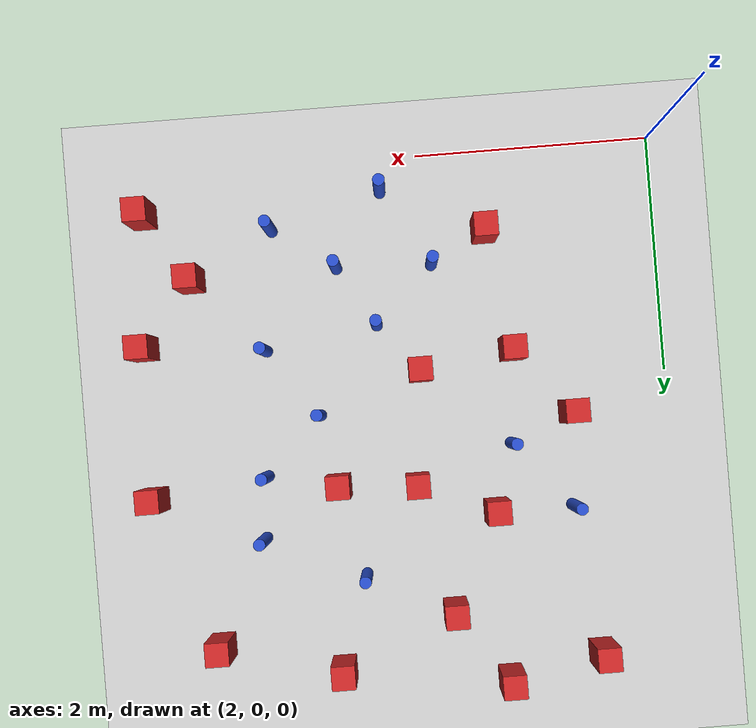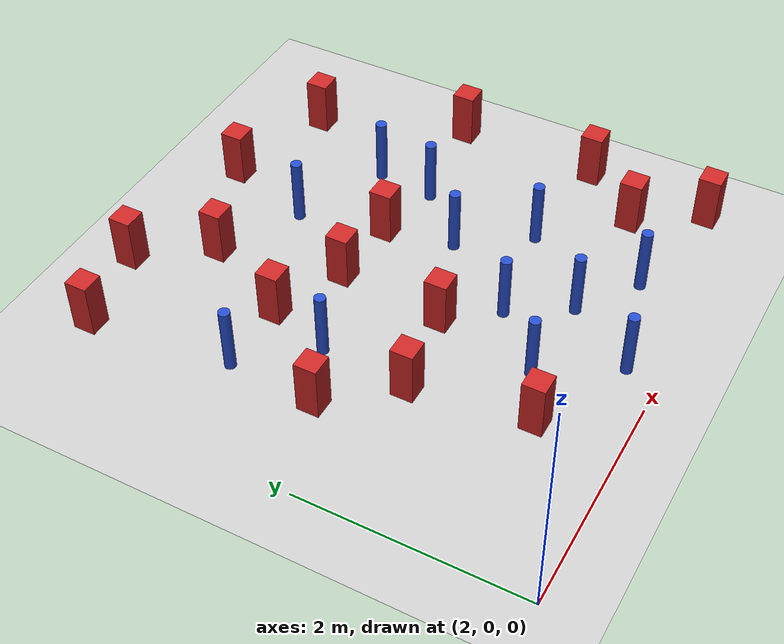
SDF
<sdf version="1.6">
 <world name="default">
  <model name="ground_plane">
   <static>1</static>
   <link name="link">
    <collision name="collision">
     <geometry><plane><normal>0 0 1</normal><size>100 100</size></plane></geometry>
     <surface><friction><ode><mu>100</mu><mu2>50</mu2></ode></friction></surface>
    </collision>
    <visual name="visual">
     <cast_shadows>0</cast_shadows>
     <geometry><plane><normal>0 0 1</normal><size>100 100</size></plane></geometry>
     <material>
      <ambient>1.0 1.0 1.0 1.0</ambient>
      <diffuse>0.8 0.8 0.8 1.0</diffuse>
      <specular>0.01 0.01 0.01 1.000000</specular>
     </material>
    </visual>
   </link>
  </model>
  <model name="square_post_obstacle9">
   <static>true</static>
   <pose>3.30981524049 1.72723753832 1.91545236811e-07 -7.35059704564e-06 1.12565212e-07 2.39332434364e-05</pose>
   <link name="link">
    <pose>0 0 0.25 0 -0 0</pose>
    <inertial>
     <mass>100</mass>
     <inertia>
      <ixx>0.166667</ixx>
      <ixy>0</ixy>
      <ixz>0</ixz>
      <iyy>0.166667</iyy>
      <iyz>0</iyz>
      <izz>0.166667</izz>
     </inertia>
    </inertial>
    <collision name="collision"><geometry><box><size>.2 .2 .5</size></box></geometry></collision>
    <visual name="visual">
     <geometry><box><size>.2 .2 .5</size></box></geometry>
     <material>
      <script><name>Gazebo/Red</name><uri>file://media/materials/scripts/gazebo.material</uri></script>
     </material>
    </visual>
   </link>
  </model>
  <model name="square_post_obstacle10">
   <static>true</static>
   <pose>6.36440647438 0.349848405972 1.91545236811e-07 -7.35059704564e-06 1.12565212e-07 2.39332434364e-05</pose>
   <link name="link">
    <pose>0 0 0.25 0 -0 0</pose>
    <inertial>
     <mass>100</mass>
     <inertia>
      <ixx>0.166667</ixx>
      <ixy>0</ixy>
      <ixz>0</ixz>
      <iyy>0.166667</iyy>
      <iyz>0</iyz>
      <izz>0.166667</izz>
     </inertia>
    </inertial>
    <collision name="collision"><geometry><box><size>.2 .2 .5</size></box></geometry></collision>
    <visual name="visual">
     <geometry><box><size>.2 .2 .5</size></box></geometry>
     <material>
      <script><name>Gazebo/Red</name><uri>file://media/materials/scripts/gazebo.material</uri></script>
     </material>
    </visual>
   </link>
  </model>
  <model name="square_post_obstacle15">
   <static>true</static>
   <pose>4.94086010703 4.34586414103 1.91545236811e-07 -7.35059704564e-06 1.12565212e-07 2.39332434364e-05</pose>
   <link name="link">
    <pose>0 0 0.25 0 -0 0</pose>
    <inertial>
     <mass>100</mass>
     <inertia>
      <ixx>0.166667</ixx>
      <ixy>0</ixy>
      <ixz>0</ixz>
      <iyy>0.166667</iyy>
      <iyz>0</iyz>
      <izz>0.166667</izz>
     </inertia>
    </inertial>
    <collision name="collision"><geometry><box><size>.2 .2 .5</size></box></geometry></collision>
    <visual name="visual">
     <geometry><box><size>.2 .2 .5</size></box></geometry>
     <material>
      <script><name>Gazebo/Red</name><uri>file://media/materials/scripts/gazebo.material</uri></script>
     </material>
    </visual>
   </link>
  </model>
  <model name="pole_obstacle23">
   <static>true</static>
   <pose>2.88126556664 3.10218381477 7.38925637345e-09 -8.47170692798e-08 1.24976764939e-08 -1.74513093025e-07</pose>
   <link name="link">
    <pose>0 0 0.3 0 -0 0</pose>
    <inertial>
     <mass>1</mass>
     <inertia><ixx>0.145833</ixx><ixy>0</ixy><ixz>0</ixz><iyy>0.145833</iyy><iyz>0</iyz><izz>0.125</izz></inertia>
    </inertial>
    <collision name="collision">
     <geometry><cylinder><radius>0.05</radius><length>.6</length></cylinder></geometry>
    </collision>
    <visual name="visual">
     <geometry><cylinder><radius>0.05</radius><length>.6</length></cylinder></geometry>
     <material>
      <script><name>Gazebo/Blue</name><uri>file://media/materials/scripts/gazebo.material</uri></script>
     </material>
    </visual>
   </link>
  </model>
  <model name="square_post_obstacle40">
   <static>true</static>
   <pose>6.44460343799 2.77317127029 1.91545236811e-07 -7.35059704564e-06 1.12565212e-07 2.39332434364e-05</pose>
   <link name="link">
    <pose>0 0 0.25 0 -0 0</pose>
    <inertial>
     <mass>100</mass>
     <inertia>
      <ixx>0.166667</ixx>
      <ixy>0</ixy>
      <ixz>0</ixz>
      <iyy>0.166667</iyy>
      <iyz>0</iyz>
      <izz>0.166667</izz>
     </inertia>
    </inertial>
    <collision name="collision"><geometry><box><size>.2 .2 .5</size></box></geometry></collision>
    <visual name="visual">
     <geometry><box><size>.2 .2 .5</size></box></geometry>
     <material>
      <script><name>Gazebo/Red</name><uri>file://media/materials/scripts/gazebo.material</uri></script>
     </material>
    </visual>
   </link>
  </model>
  <model name="pole_obstacle54">
   <static>true</static>
   <pose>3.36767603161 2.5311120097 7.38925637345e-09 -8.47170692798e-08 1.24976764939e-08 -1.74513093025e-07</pose>
   <link name="link">
    <pose>0 0 0.3 0 -0 0</pose>
    <inertial>
     <mass>1</mass>
     <inertia><ixx>0.145833</ixx><ixy>0</ixy><ixz>0</ixz><iyy>0.145833</iyy><iyz>0</iyz><izz>0.125</izz></inertia>
    </inertial>
    <collision name="collision">
     <geometry><cylinder><radius>0.05</radius><length>.6</length></cylinder></geometry>
    </collision>
    <visual name="visual">
     <geometry><cylinder><radius>0.05</radius><length>.6</length></cylinder></geometry>
     <material>
      <script><name>Gazebo/Blue</name><uri>file://media/materials/scripts/gazebo.material</uri></script>
     </material>
    </visual>
   </link>
  </model>
  <model name="pole_obstacle65">
   <static>true</static>
   <pose>4.75222611093 0.916089162398 7.38925637345e-09 -8.47170692799e-08 1.24976765038e-08 -1.74513093018e-07</pose>
   <link name="link">
    <pose>0 0 0.3 0 -0 0</pose>
    <inertial>
     <mass>1</mass>
     <inertia><ixx>0.145833</ixx><ixy>0</ixy><ixz>0</ixz><iyy>0.145833</iyy><iyz>0</iyz><izz>0.125</izz></inertia>
    </inertial>
    <collision name="collision">
     <geometry><cylinder><radius>0.05</radius><length>.6</length></cylinder></geometry>
    </collision>
    <visual name="visual">
     <geometry><cylinder><radius>0.05</radius><length>.6</length></cylinder></geometry>
     <material>
      <script><name>Gazebo/Blue</name><uri>file://media/materials/scripts/gazebo.material</uri></script>
     </material>
    </visual>
   </link>
  </model>
  <model name="square_post_obstacle51">
   <static>true</static>
   <pose>4.86624607908 2.77830074005 1.91545236811e-07 -7.35059704564e-06 1.12565212e-07 2.39332434364e-05</pose>
   <link name="link">
    <pose>0 0 0.25 0 -0 0</pose>
    <inertial>
     <mass>100</mass>
     <inertia>
      <ixx>0.166667</ixx>
      <ixy>0</ixy>
      <ixz>0</ixz>
      <iyy>0.166667</iyy>
      <iyz>0</iyz>
      <izz>0.166667</izz>
     </inertia>
    </inertial>
    <collision name="collision"><geometry><box><size>.2 .2 .5</size></box></geometry></collision>
    <visual name="visual">
     <geometry><box><size>.2 .2 .5</size></box></geometry>
     <material>
      <script><name>Gazebo/Red</name><uri>file://media/materials/scripts/gazebo.material</uri></script>
     </material>
    </visual>
   </link>
  </model>
  <model name="pole_obstacle82">
   <static>true</static>
   <pose>3.93563042666 0.946828418988 7.38925637345e-09 -8.471706928e-08 1.24976765177e-08 -1.74513093012e-07</pose>
   <link name="link">
    <pose>0 0 0.3 0 -0 0</pose>
    <inertial>
     <mass>1</mass>
     <inertia><ixx>0.145833</ixx><ixy>0</ixy><ixz>0</ixz><iyy>0.145833</iyy><iyz>0</iyz><izz>0.125</izz></inertia>
    </inertial>
    <collision name="collision">
     <geometry><cylinder><radius>0.05</radius><length>.6</length></cylinder></geometry>
    </collision>
    <visual name="visual">
     <geometry><cylinder><radius>0.05</radius><length>.6</length></cylinder></geometry>
     <material>
      <script><name>Gazebo/Blue</name><uri>file://media/materials/scripts/gazebo.material</uri></script>
     </material>
    </visual>
   </link>
  </model>
  <model name="square_post_obstacle82">
   <static>true</static>
   <pose>4.19795775018 2.82239375829 1.91545236811e-07 -7.35059704564e-06 1.12565212e-07 2.39332434364e-05</pose>
   <link name="link">
    <pose>0 0 0.25 0 -0 0</pose>
    <inertial>
     <mass>100</mass>
     <inertia>
      <ixx>0.166667</ixx>
      <ixy>0</ixy>
      <ixz>0</ixz>
      <iyy>0.166667</iyy>
      <iyz>0</iyz>
      <izz>0.166667</izz>
     </inertia>
    </inertial>
    <collision name="collision"><geometry><box><size>.2 .2 .5</size></box></geometry></collision>
    <visual name="visual">
     <geometry><box><size>.2 .2 .5</size></box></geometry>
     <material>
      <script><name>Gazebo/Red</name><uri>file://media/materials/scripts/gazebo.material</uri></script>
     </material>
    </visual>
   </link>
  </model>
  <model name="pole_obstacle100">
   <static>true</static>
   <pose>5.28343789508 0.550524538946 7.38925637345e-09 -8.47170692799e-08 1.24976765038e-08 -1.74513093018e-07</pose>
   <link name="link">
    <pose>0 0 0.3 0 -0 0</pose>
    <inertial>
     <mass>1</mass>
     <inertia><ixx>0.145833</ixx><ixy>0</ixy><ixz>0</ixz><iyy>0.145833</iyy><iyz>0</iyz><izz>0.125</izz></inertia>
    </inertial>
    <collision name="collision">
     <geometry><cylinder><radius>0.05</radius><length>.6</length></cylinder></geometry>
    </collision>
    <visual name="visual">
     <geometry><cylinder><radius>0.05</radius><length>.6</length></cylinder></geometry>
     <material>
      <script><name>Gazebo/Blue</name><uri>file://media/materials/scripts/gazebo.material</uri></script>
     </material>
    </visual>
   </link>
  </model>
  <model name="pole_obstacle108">
   <static>true</static>
   <pose>5.40565275918 1.57980055018 7.38925637345e-09 -8.471706928e-08 1.24976765134e-08 -1.74513093015e-07</pose>
   <link name="link">
    <pose>0 0 0.3 0 -0 0</pose>
    <inertial>
     <mass>1</mass>
     <inertia><ixx>0.145833</ixx><ixy>0</ixy><ixz>0</ixz><iyy>0.145833</iyy><iyz>0</iyz><izz>0.125</izz></inertia>
    </inertial>
    <collision name="collision">
     <geometry><cylinder><radius>0.05</radius><length>.6</length></cylinder></geometry>
    </collision>
    <visual name="visual">
     <geometry><cylinder><radius>0.05</radius><length>.6</length></cylinder></geometry>
     <material>
      <script><name>Gazebo/Blue</name><uri>file://media/materials/scripts/gazebo.material</uri></script>
     </material>
    </visual>
   </link>
  </model>
  <model name="pole_obstacle115">
   <static>true</static>
   <pose>5.47574123155 2.65554993993 7.38925637345e-09 -8.47170692798e-08 1.24976764937e-08 -1.74513093023e-07</pose>
   <link name="link">
    <pose>0 0 0.3 0 -0 0</pose>
    <inertial>
     <mass>1</mass>
     <inertia><ixx>0.145833</ixx><ixy>0</ixy><ixz>0</ixz><iyy>0.145833</iyy><iyz>0</iyz><izz>0.125</izz></inertia>
    </inertial>
    <collision name="collision">
     <geometry><cylinder><radius>0.05</radius><length>.6</length></cylinder></geometry>
    </collision>
    <visual name="visual">
     <geometry><cylinder><radius>0.05</radius><length>.6</length></cylinder></geometry>
     <material>
      <script><name>Gazebo/Blue</name><uri>file://media/materials/scripts/gazebo.material</uri></script>
     </material>
    </visual>
   </link>
  </model>
  <model name="pole_obstacle124">
   <static>true</static>
   <pose>4.69202864698 3.55970135627 7.38925637345e-09 -8.47170692798e-08 1.24976764937e-08 -1.74513093023e-07</pose>
   <link name="link">
    <pose>0 0 0.3 0 -0 0</pose>
    <inertial>
     <mass>1</mass>
     <inertia><ixx>0.145833</ixx><ixy>0</ixy><ixz>0</ixz><iyy>0.145833</iyy><iyz>0</iyz><izz>0.125</izz></inertia>
    </inertial>
    <collision name="collision">
     <geometry><cylinder><radius>0.05</radius><length>.6</length></cylinder></geometry>
    </collision>
    <visual name="visual">
     <geometry><cylinder><radius>0.05</radius><length>.6</length></cylinder></geometry>
     <material>
      <script><name>Gazebo/Blue</name><uri>file://media/materials/scripts/gazebo.material</uri></script>
     </material>
    </visual>
   </link>
  </model>
  <model name="square_post_obstacle126">
   <static>true</static>
   <pose>3.54507340061 3.09247291131 1.91545236811e-07 -7.35059704564e-06 1.12565212e-07 2.39332434364e-05</pose>
   <link name="link">
    <pose>0 0 0.25 0 -0 0</pose>
    <inertial>
     <mass>100</mass>
     <inertia>
      <ixx>0.166667</ixx>
      <ixy>0</ixy>
      <ixz>0</ixz>
      <iyy>0.166667</iyy>
      <iyz>0</iyz>
      <izz>0.166667</izz>
     </inertia>
    </inertial>
    <collision name="collision"><geometry><box><size>.2 .2 .5</size></box></geometry></collision>
    <visual name="visual">
     <geometry><box><size>.2 .2 .5</size></box></geometry>
     <material>
      <script><name>Gazebo/Red</name><uri>file://media/materials/scripts/gazebo.material</uri></script>
     </material>
    </visual>
   </link>
  </model>
  <model name="pole_obstacle133">
   <static>true</static>
   <pose>4.98295653756 2.16622271053 7.38925637345e-09 -8.47170692798e-08 1.24976764937e-08 -1.74513093023e-07</pose>
   <link name="link">
    <pose>0 0 0.3 0 -0 0</pose>
    <inertial>
     <mass>1</mass>
     <inertia><ixx>0.145833</ixx><ixy>0</ixy><ixz>0</ixz><iyy>0.145833</iyy><iyz>0</iyz><izz>0.125</izz></inertia>
    </inertial>
    <collision name="collision">
     <geometry><cylinder><radius>0.05</radius><length>.6</length></cylinder></geometry>
    </collision>
    <visual name="visual">
     <geometry><cylinder><radius>0.05</radius><length>.6</length></cylinder></geometry>
     <material>
      <script><name>Gazebo/Blue</name><uri>file://media/materials/scripts/gazebo.material</uri></script>
     </material>
    </visual>
   </link>
  </model>
  <model name="square_post_obstacle147">
   <static>true</static>
   <pose>5.96679147998 4.07127458139 1.91545236811e-07 -7.35059704564e-06 1.12565212e-07 2.39332434364e-05</pose>
   <link name="link">
    <pose>0 0 0.25 0 -0 0</pose>
    <inertial>
     <mass>100</mass>
     <inertia>
      <ixx>0.166667</ixx>
      <ixy>0</ixy>
      <ixz>0</ixz>
      <iyy>0.166667</iyy>
      <iyz>0</iyz>
      <izz>0.166667</izz>
     </inertia>
    </inertial>
    <collision name="collision"><geometry><box><size>.2 .2 .5</size></box></geometry></collision>
    <visual name="visual">
     <geometry><box><size>.2 .2 .5</size></box></geometry>
     <material>
      <script><name>Gazebo/Red</name><uri>file://media/materials/scripts/gazebo.material</uri></script>
     </material>
    </visual>
   </link>
  </model>
  <model name="square_post_obstacle149">
   <static>true</static>
   <pose>5.99089258848 0.931292589408 1.91545236811e-07 -7.35059704564e-06 1.12565212e-07 2.39332434364e-05</pose>
   <link name="link">
    <pose>0 0 0.25 0 -0 0</pose>
    <inertial>
     <mass>100</mass>
     <inertia>
      <ixx>0.166667</ixx>
      <ixy>0</ixy>
      <ixz>0</ixz>
      <iyy>0.166667</iyy>
      <iyz>0</iyz>
      <izz>0.166667</izz>
     </inertia>
    </inertial>
    <collision name="collision"><geometry><box><size>.2 .2 .5</size></box></geometry></collision>
    <visual name="visual">
     <geometry><box><size>.2 .2 .5</size></box></geometry>
     <material>
      <script><name>Gazebo/Red</name><uri>file://media/materials/scripts/gazebo.material</uri></script>
     </material>
    </visual>
   </link>
  </model>
  <model name="square_post_obstacle169">
   <static>true</static>
   <pose>3.9601357315 3.92242300364 1.91545236811e-07 -7.35059704564e-06 1.12565212e-07 2.39332434364e-05</pose>
   <link name="link">
    <pose>0 0 0.25 0 -0 0</pose>
    <inertial>
     <mass>100</mass>
     <inertia>
      <ixx>0.166667</ixx>
      <ixy>0</ixy>
      <ixz>0</ixz>
      <iyy>0.166667</iyy>
      <iyz>0</iyz>
      <izz>0.166667</izz>
     </inertia>
    </inertial>
    <collision name="collision"><geometry><box><size>.2 .2 .5</size></box></geometry></collision>
    <visual name="visual">
     <geometry><box><size>.2 .2 .5</size></box></geometry>
     <material>
      <script><name>Gazebo/Red</name><uri>file://media/materials/scripts/gazebo.material</uri></script>
     </material>
    </visual>
   </link>
  </model>
  <model name="pole_obstacle173">
   <static>true</static>
   <pose>5.5318144581 3.18457841593 7.38925637345e-09 -8.47170692798e-08 1.24976764937e-08 -1.74513093023e-07</pose>
   <link name="link">
    <pose>0 0 0.3 0 -0 0</pose>
    <inertial>
     <mass>1</mass>
     <inertia><ixx>0.145833</ixx><ixy>0</ixy><ixz>0</ixz><iyy>0.145833</iyy><iyz>0</iyz><izz>0.125</izz></inertia>
    </inertial>
    <collision name="collision">
     <geometry><cylinder><radius>0.05</radius><length>.6</length></cylinder></geometry>
    </collision>
    <visual name="visual">
     <geometry><cylinder><radius>0.05</radius><length>.6</length></cylinder></geometry>
     <material>
      <script><name>Gazebo/Blue</name><uri>file://media/materials/scripts/gazebo.material</uri></script>
     </material>
    </visual>
   </link>
  </model>
  <model name="square_post_obstacle172">
   <static>true</static>
   <pose>4.10298631683 1.84876126198 1.91545236811e-07 -7.35059704564e-06 1.12565212e-07 2.39332434364e-05</pose>
   <link name="link">
    <pose>0 0 0.25 0 -0 0</pose>
    <inertial>
     <mass>100</mass>
     <inertia>
      <ixx>0.166667</ixx>
      <ixy>0</ixy>
      <ixz>0</ixz>
      <iyy>0.166667</iyy>
      <iyz>0</iyz>
      <izz>0.166667</izz>
     </inertia>
    </inertial>
    <collision name="collision"><geometry><box><size>.2 .2 .5</size></box></geometry></collision>
    <visual name="visual">
     <geometry><box><size>.2 .2 .5</size></box></geometry>
     <material>
      <script><name>Gazebo/Red</name><uri>file://media/materials/scripts/gazebo.material</uri></script>
     </material>
    </visual>
   </link>
  </model>
  <model name="square_post_obstacle175">
   <static>true</static>
   <pose>6.43571907906 1.48435942812 1.91545236811e-07 -7.35059704564e-06 1.12565212e-07 2.39332434364e-05</pose>
   <link name="link">
    <pose>0 0 0.25 0 -0 0</pose>
    <inertial>
     <mass>100</mass>
     <inertia>
      <ixx>0.166667</ixx>
      <ixy>0</ixy>
      <ixz>0</ixz>
      <iyy>0.166667</iyy>
      <iyz>0</iyz>
      <izz>0.166667</izz>
     </inertia>
    </inertial>
    <collision name="collision"><geometry><box><size>.2 .2 .5</size></box></geometry></collision>
    <visual name="visual">
     <geometry><box><size>.2 .2 .5</size></box></geometry>
     <material>
      <script><name>Gazebo/Red</name><uri>file://media/materials/scripts/gazebo.material</uri></script>
     </material>
    </visual>
   </link>
  </model>
  <model name="square_post_obstacle177">
   <static>true</static>
   <pose>2.83604754993 2.29668768768 1.91545236811e-07 -7.35059704564e-06 1.12565212e-07 2.39332434364e-05</pose>
   <link name="link">
    <pose>0 0 0.25 0 -0 0</pose>
    <inertial>
     <mass>100</mass>
     <inertia>
      <ixx>0.166667</ixx>
      <ixy>0</ixy>
      <ixz>0</ixz>
      <iyy>0.166667</iyy>
      <iyz>0</iyz>
      <izz>0.166667</izz>
     </inertia>
    </inertial>
    <collision name="collision"><geometry><box><size>.2 .2 .5</size></box></geometry></collision>
    <visual name="visual">
     <geometry><box><size>.2 .2 .5</size></box></geometry>
     <material>
      <script><name>Gazebo/Red</name><uri>file://media/materials/scripts/gazebo.material</uri></script>
     </material>
    </visual>
   </link>
  </model>
  <model name="square_post_obstacle191">
   <static>true</static>
   <pose>3.53058065706 4.53478869564 1.91545236811e-07 -7.35059704564e-06 1.12565212e-07 2.39332434364e-05</pose>
   <link name="link">
    <pose>0 0 0.25 0 -0 0</pose>
    <inertial>
     <mass>100</mass>
     <inertia>
      <ixx>0.166667</ixx>
      <ixy>0</ixy>
      <ixz>0</ixz>
      <iyy>0.166667</iyy>
      <iyz>0</iyz>
      <izz>0.166667</izz>
     </inertia>
    </inertial>
    <collision name="collision"><geometry><box><size>.2 .2 .5</size></box></geometry></collision>
    <visual name="visual">
     <geometry><box><size>.2 .2 .5</size></box></geometry>
     <material>
      <script><name>Gazebo/Red</name><uri>file://media/materials/scripts/gazebo.material</uri></script>
     </material>
    </visual>
   </link>
  </model>
  <model name="pole_obstacle198">
   <static>true</static>
   <pose>4.32836339891 0.288305664324 7.38925637345e-09 -8.47170692799e-08 1.24976765028e-08 -1.74513093019e-07</pose>
   <link name="link">
    <pose>0 0 0.3 0 -0 0</pose>
    <inertial>
     <mass>1</mass>
     <inertia><ixx>0.145833</ixx><ixy>0</ixy><ixz>0</ixz><iyy>0.145833</iyy><iyz>0</iyz><izz>0.125</izz></inertia>
    </inertial>
    <collision name="collision">
     <geometry><cylinder><radius>0.05</radius><length>.6</length></cylinder></geometry>
    </collision>
    <visual name="visual">
     <geometry><cylinder><radius>0.05</radius><length>.6</length></cylinder></geometry>
     <material>
      <script><name>Gazebo/Blue</name><uri>file://media/materials/scripts/gazebo.material</uri></script>
     </material>
    </visual>
   </link>
  </model>
  <model name="pole_obstacle201">
   <static>true</static>
   <pose>4.44161592882 1.43014429339 7.38925637345e-09 -8.471706928e-08 1.24976765134e-08 -1.74513093015e-07</pose>
   <link name="link">
    <pose>0 0 0.3 0 -0 0</pose>
    <inertial>
     <mass>1</mass>
     <inertia><ixx>0.145833</ixx><ixy>0</ixy><ixz>0</ixz><iyy>0.145833</iyy><iyz>0</iyz><izz>0.125</izz></inertia>
    </inertial>
    <collision name="collision">
     <geometry><cylinder><radius>0.05</radius><length>.6</length></cylinder></geometry>
    </collision>
    <visual name="visual">
     <geometry><cylinder><radius>0.05</radius><length>.6</length></cylinder></geometry>
     <material>
      <script><name>Gazebo/Blue</name><uri>file://media/materials/scripts/gazebo.material</uri></script>
     </material>
    </visual>
   </link>
  </model>
  <model name="square_post_obstacle208">
   <static>true</static>
   <pose>2.73488946011 4.37147517957 1.91545236811e-07 -7.35059704564e-06 1.12565212e-07 2.39332434364e-05</pose>
   <link name="link">
    <pose>0 0 0.25 0 -0 0</pose>
    <inertial>
     <mass>100</mass>
     <inertia>
      <ixx>0.166667</ixx>
      <ixy>0</ixy>
      <ixz>0</ixz>
      <iyy>0.166667</iyy>
      <iyz>0</iyz>
      <izz>0.166667</izz>
     </inertia>
    </inertial>
    <collision name="collision"><geometry><box><size>.2 .2 .5</size></box></geometry></collision>
    <visual name="visual">
     <geometry><box><size>.2 .2 .5</size></box></geometry>
     <material>
      <script><name>Gazebo/Red</name><uri>file://media/materials/scripts/gazebo.material</uri></script>
     </material>
    </visual>
   </link>
  </model>
  <model name="square_post_obstacle223">
   <static>true</static>
   <pose>3.47098171475 0.696925978285 1.91545236811e-07 -7.35059704564e-06 1.12565212e-07 2.39332434364e-05</pose>
   <link name="link">
    <pose>0 0 0.25 0 -0 0</pose>
    <inertial>
     <mass>100</mass>
     <inertia>
      <ixx>0.166667</ixx>
      <ixy>0</ixy>
      <ixz>0</ixz>
      <iyy>0.166667</iyy>
      <iyz>0</iyz>
      <izz>0.166667</izz>
     </inertia>
    </inertial>
    <collision name="collision"><geometry><box><size>.2 .2 .5</size></box></geometry></collision>
    <visual name="visual">
     <geometry><box><size>.2 .2 .5</size></box></geometry>
     <material>
      <script><name>Gazebo/Red</name><uri>file://media/materials/scripts/gazebo.material</uri></script>
     </material>
    </visual>
   </link>
  </model>
 </world>
</sdf>
